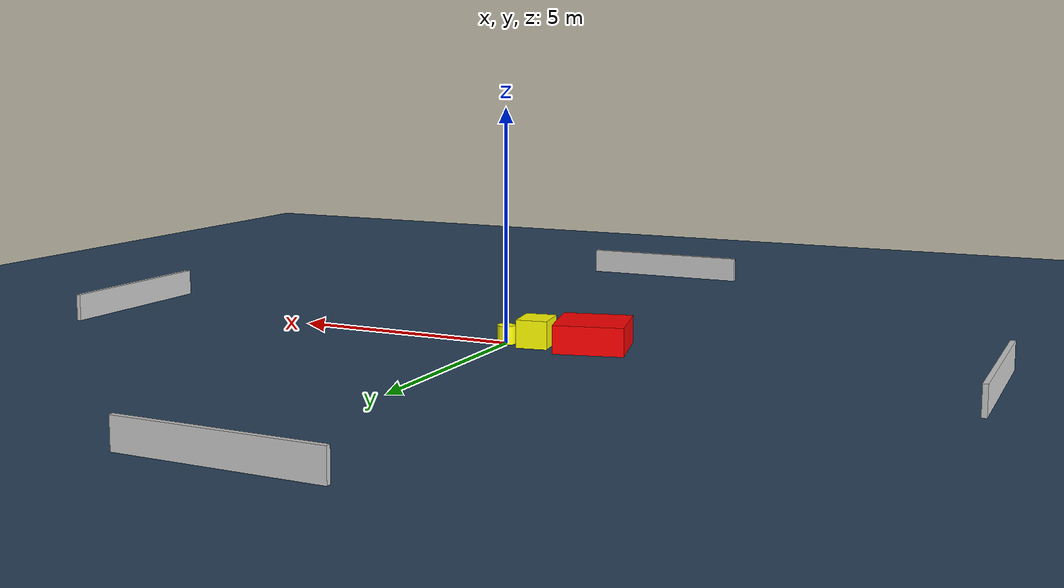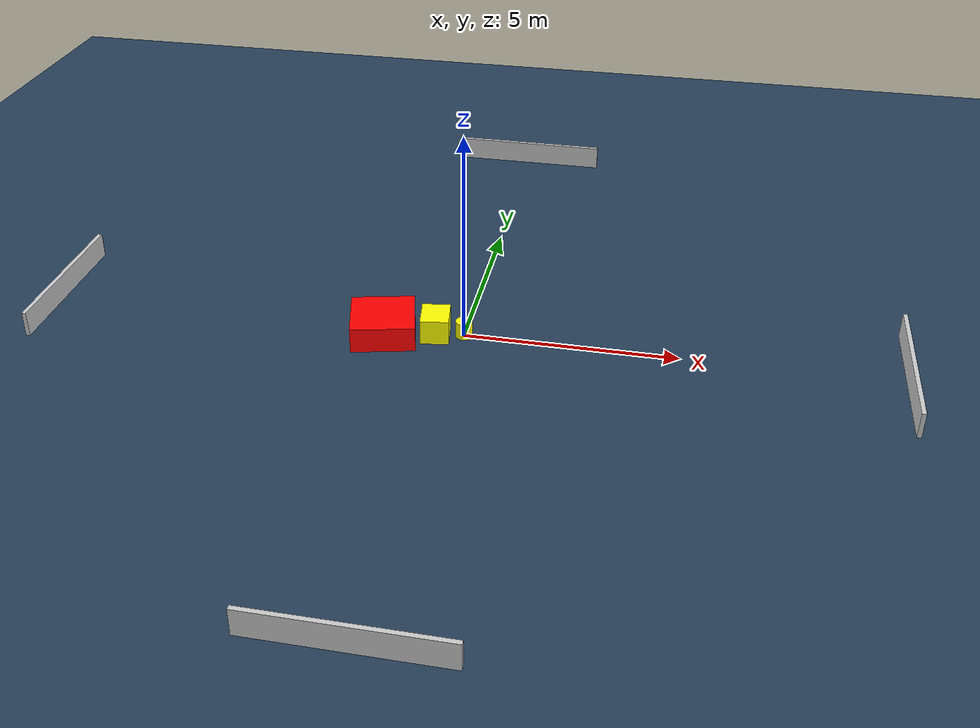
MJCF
<?xml version="1.0" ?>
<mujoco model="generated_environment">
  <option timestep="0.01" integrator="RK4" cone="elliptic"/>
  <default>
    <geom density="1"/>
  </default>
  <asset>
    <texture builtin="gradient" height="3072" name="skybox" rgb1="0.3 0.5 0.7" rgb2="0 0 0" type="skybox" width="512"/>
    <texture builtin="checker" height="300" name="groundplane" rgb1="0.2 0.3 0.4" rgb2="0.1 0.2 0.3" type="2d" width="300"/>
    <material name="groundplane" reflectance="0.2" texrepeat="5 5" texture="groundplane"/>
  </asset>
  <worldbody>
    <light dir="0 0 -1" directional="true" pos="0 0 1.5"/>
    <geom condim="3" friction="0.5 0.005 0.001" material="groundplane" name="floor" pos="0 0 0" size="0 0 0.05" type="plane"/>
    <body name="walls">
      <geom name="wall_1" condim="4" pos="-10.0 0.0 0.3" rgba="0.800000011920929 0.800000011920929 0.800000011920929 1.0" size="0.05 2.0 0.3" type="box"/>
      <geom name="wall_2" condim="4" pos="10.0 0.0 0.3" rgba="0.800000011920929 0.800000011920929 0.800000011920929 1.0" size="0.05 2.0 0.3" type="box"/>
      <geom name="wall_3" condim="4" pos="0.0 -10.0 0.3" rgba="0.800000011920929 0.800000011920929 0.800000011920929 1.0" size="2.0 0.05 0.3" type="box"/>
      <geom name="wall_4" condim="4" pos="0.0 10.0 0.3" rgba="0.800000011920929 0.800000011920929 0.800000011920929 1.0" size="2.0 0.05 0.3" type="box"/>
    </body>
    <body name="robot">
      <joint name="joint_x" type="slide" pos="0 0 0" axis="1 0 0"/>
      <joint name="joint_y" type="slide" pos="0 0 0" axis="0 1 0"/>
      <geom name="robot" type="cylinder" pos="0.0 0.0 0.2" size="0.2 0.2 0.0" mass="5.0" friction="1.0 0.005 0.0001" condim="4" rgba="1.0 1.0 0.0 1.0"/>
    </body>
    <body name="obstacle_1_movable">
      <geom name="obstacle_1_movable" condim="4" pos="-0.6610672080511357 -0.09848074445965425 0.3" euler="0 0 188.3462804449345" friction="0.0 0.005 0.001" rgba="1.0 1.0 0.0 1.0" size="0.33283234881161083 0.4019781483367221 0.3" type="box" mass="0.1"/>
      <joint type="free"/>
    </body>
    <body name="obstacle_2_static">
      <geom name="obstacle_2_static" condim="4" pos="-1.861049625219916 -0.3242175101230653 0.3" euler="0 0 13.566468750278018" friction="0.0 0.005 0.001" rgba="1.0 0.0 0.0 1.0" size="0.7451420504867128 0.7323901631902685 0.3" type="box"/>
    </body>
  </worldbody>
  <actuator>
    <motor name="actuator_x" joint="joint_x" gear="1" ctrlrange="-1 1"/>
    <motor name="actuator_y" joint="joint_y" gear="1" ctrlrange="-1 1"/>
  </actuator>
</mujoco>
